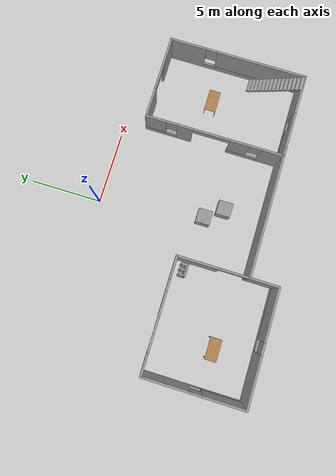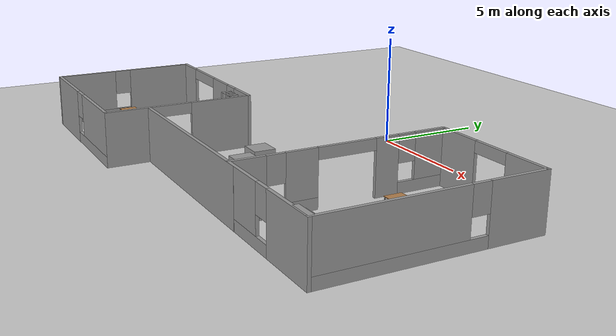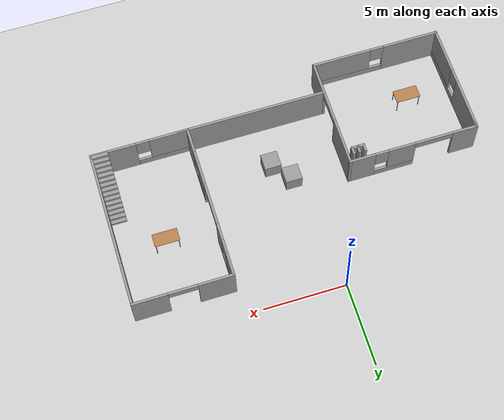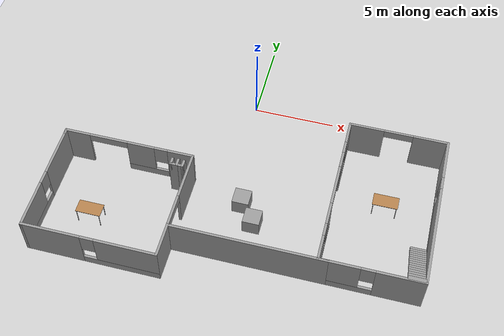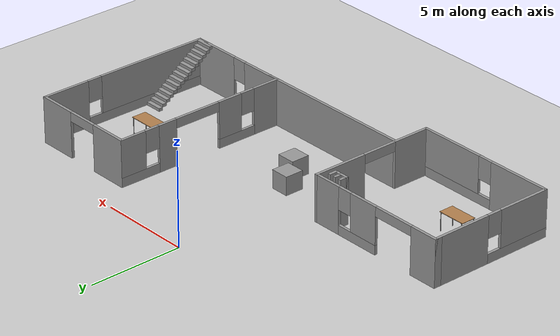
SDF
<sdf version="1.6">
 <world name="default">
  <model name="ground_plane">
   <static>1</static>
   <link name="link">
    <collision name="collision">
     <geometry><plane><normal>0 0 1</normal><size>100 100</size></plane></geometry>
     <surface>
      <contact><collide_bitmask>65535</collide_bitmask></contact>
      <friction><ode><mu>100</mu><mu2>50</mu2></ode></friction>
     </surface>
    </collision>
    <visual name="visual">
     <cast_shadows>0</cast_shadows>
     <geometry><plane><normal>0 0 1</normal><size>100 100</size></plane></geometry>
     <material>
      <script><uri>file://media/materials/scripts/gazebo.material</uri><name>Gazebo/Grey</name></script>
     </material>
    </visual>
   </link>
  </model>
  <model name="house3">
   <pose>-6.19988 -9.75215 0 0 -0 0</pose>
   <link name="Wall_3">
    <pose>-0 3.425 0 0 -0 3.14159</pose>
    <visual name="Wall_3_Visual_0">
     <pose>-3.18921 0 1.25 0 -0 0</pose>
     <geometry><box><size>1.62157 0.15 2.5</size></box></geometry>
     <material>
      <script><uri>file://media/materials/scripts/gazebo.material</uri><name>Gazebo/Grey</name></script>
      <ambient>1 1 1 1</ambient>
     </material>
     <meta><layer>0</layer></meta>
    </visual>
    <collision name="Wall_3_Collision_0">
     <geometry><box><size>1.62157 0.15 2.5</size></box></geometry>
     <pose>-3.18921 0 1.25 0 -0 0</pose>
    </collision>
    <visual name="Wall_3_Visual_1">
     <pose>3.20799 0 1.25 0 -0 0</pose>
     <geometry><box><size>1.58401 0.15 2.5</size></box></geometry>
     <material>
      <script><uri>file://media/materials/scripts/gazebo.material</uri><name>Gazebo/Grey</name></script>
      <ambient>1 1 1 1</ambient>
     </material>
     <meta><layer>0</layer></meta>
    </visual>
    <collision name="Wall_3_Collision_1">
     <geometry><box><size>1.58401 0.15 2.5</size></box></geometry>
     <pose>3.20799 0 1.25 0 -0 0</pose>
    </collision>
    <visual name="Wall_3_Visual_2">
     <pose>-1.13919 0 0.25 0 -0 0</pose>
     <geometry><box><size>2.47847 0.15 0.5</size></box></geometry>
     <material>
      <script><uri>file://media/materials/scripts/gazebo.material</uri><name>Gazebo/Grey</name></script>
      <ambient>1 1 1 1</ambient>
     </material>
     <meta><layer>0</layer></meta>
    </visual>
    <collision name="Wall_3_Collision_2">
     <geometry><box><size>2.47847 0.15 0.5</size></box></geometry>
     <pose>-1.13919 0 0.25 0 -0 0</pose>
    </collision>
    <visual name="Wall_3_Visual_3">
     <pose>-0.739193 0 1.5 0 -0 0</pose>
     <geometry><box><size>1.67847 0.15 2</size></box></geometry>
     <material>
      <script><uri>file://media/materials/scripts/gazebo.material</uri><name>Gazebo/Grey</name></script>
      <ambient>1 1 1 1</ambient>
     </material>
     <meta><layer>0</layer></meta>
    </visual>
    <collision name="Wall_3_Collision_3">
     <geometry><box><size>1.67847 0.15 2</size></box></geometry>
     <pose>-0.739193 0 1.5 0 -0 0</pose>
    </collision>
    <visual name="Wall_3_Visual_4">
     <pose>-1.97843 0 1.9 0 -0 0</pose>
     <geometry><box><size>0.8 0.15 1.2</size></box></geometry>
     <material>
      <script><uri>file://media/materials/scripts/gazebo.material</uri><name>Gazebo/Grey</name></script>
      <ambient>1 1 1 1</ambient>
     </material>
     <meta><layer>0</layer></meta>
    </visual>
    <collision name="Wall_3_Collision_4">
     <geometry><box><size>0.8 0.15 1.2</size></box></geometry>
     <pose>-1.97843 0 1.9 0 -0 0</pose>
    </collision>
    <visual name="Wall_3_Visual_5">
     <pose>1.25802 0 2.25 0 -0 0</pose>
     <geometry><box><size>2.31595 0.15 0.5</size></box></geometry>
     <material>
      <script><uri>file://media/materials/scripts/gazebo.material</uri><name>Gazebo/Grey</name></script>
      <ambient>1 1 1 1</ambient>
     </material>
     <meta><layer>0</layer></meta>
    </visual>
    <collision name="Wall_3_Collision_5">
     <geometry><box><size>2.31595 0.15 0.5</size></box></geometry>
     <pose>1.25802 0 2.25 0 -0 0</pose>
    </collision>
   </link>
   <link name="Wall_4">
    <collision name="Wall_4_Collision">
     <geometry><box><size>0.4 0.15 2.5</size></box></geometry>
     <pose>0 0 1.25 0 -0 0</pose>
    </collision>
    <visual name="Wall_4_Visual">
     <pose>0 0 1.25 0 -0 0</pose>
     <geometry><box><size>0.4 0.15 2.5</size></box></geometry>
     <material>
      <script><uri>file://media/materials/scripts/gazebo.material</uri><name>Gazebo/Grey</name></script>
      <ambient>1 1 1 1</ambient>
     </material>
     <meta><layer>0</layer></meta>
    </visual>
    <pose>-3.925 3.3 0 0 -0 -1.5708</pose>
   </link>
   <link name="Wall_6">
    <pose>-3.925 0 0 0 -0 -1.5708</pose>
    <visual name="Wall_6_Visual_0">
     <pose>-1.85783 0 1.25 0 -0 0</pose>
     <geometry><box><size>3.28434 0.15 2.5</size></box></geometry>
     <material>
      <script><uri>file://media/materials/scripts/gazebo.material</uri><name>Gazebo/Grey</name></script>
      <ambient>1 1 1 1</ambient>
     </material>
     <meta><layer>0</layer></meta>
    </visual>
    <collision name="Wall_6_Collision_0">
     <geometry><box><size>3.28434 0.15 2.5</size></box></geometry>
     <pose>-1.85783 0 1.25 0 -0 0</pose>
    </collision>
    <visual name="Wall_6_Visual_1">
     <pose>1.64217 0 0.25 0 -0 0</pose>
     <geometry><box><size>3.71566 0.15 0.5</size></box></geometry>
     <material>
      <script><uri>file://media/materials/scripts/gazebo.material</uri><name>Gazebo/Grey</name></script>
      <ambient>1 1 1 1</ambient>
     </material>
     <meta><layer>0</layer></meta>
    </visual>
    <collision name="Wall_6_Collision_1">
     <geometry><box><size>3.71566 0.15 0.5</size></box></geometry>
     <pose>1.64217 0 0.25 0 -0 0</pose>
    </collision>
    <visual name="Wall_6_Visual_2">
     <pose>2.04217 0 1.5 0 -0 0</pose>
     <geometry><box><size>2.91566 0.15 2</size></box></geometry>
     <material>
      <script><uri>file://media/materials/scripts/gazebo.material</uri><name>Gazebo/Grey</name></script>
      <ambient>1 1 1 1</ambient>
     </material>
     <meta><layer>0</layer></meta>
    </visual>
    <collision name="Wall_6_Collision_2">
     <geometry><box><size>2.91566 0.15 2</size></box></geometry>
     <pose>2.04217 0 1.5 0 -0 0</pose>
    </collision>
    <visual name="Wall_6_Visual_3">
     <pose>0.18434 0 1.9 0 -0 0</pose>
     <geometry><box><size>0.8 0.15 1.2</size></box></geometry>
     <material>
      <script><uri>file://media/materials/scripts/gazebo.material</uri><name>Gazebo/Grey</name></script>
      <ambient>1 1 1 1</ambient>
     </material>
     <meta><layer>0</layer></meta>
    </visual>
    <collision name="Wall_6_Collision_3">
     <geometry><box><size>0.8 0.15 1.2</size></box></geometry>
     <pose>0.18434 0 1.9 0 -0 0</pose>
    </collision>
   </link>
   <link name="Wall_7">
    <pose>-0 -3.425 0 0 -0 0</pose>
    <visual name="Wall_7_Visual_0">
     <pose>-2.2424 0 1.25 0 -0 0</pose>
     <geometry><box><size>3.51519 0.15 2.5</size></box></geometry>
     <material>
      <script><uri>file://media/materials/scripts/gazebo.material</uri><name>Gazebo/Grey</name></script>
      <ambient>1 1 1 1</ambient>
     </material>
     <meta><layer>0</layer></meta>
    </visual>
    <collision name="Wall_7_Collision_0">
     <geometry><box><size>3.51519 0.15 2.5</size></box></geometry>
     <pose>-2.2424 0 1.25 0 -0 0</pose>
    </collision>
    <visual name="Wall_7_Visual_1">
     <pose>1.7576 0 0.25 0 -0 0</pose>
     <geometry><box><size>4.4848 0.15 0.5</size></box></geometry>
     <material>
      <script><uri>file://media/materials/scripts/gazebo.material</uri><name>Gazebo/Grey</name></script>
      <ambient>1 1 1 1</ambient>
     </material>
     <meta><layer>0</layer></meta>
    </visual>
    <collision name="Wall_7_Collision_1">
     <geometry><box><size>4.4848 0.15 0.5</size></box></geometry>
     <pose>1.7576 0 0.25 0 -0 0</pose>
    </collision>
    <visual name="Wall_7_Visual_2">
     <pose>2.1576 0 1.5 0 -0 0</pose>
     <geometry><box><size>3.6848 0.15 2</size></box></geometry>
     <material>
      <script><uri>file://media/materials/scripts/gazebo.material</uri><name>Gazebo/Grey</name></script>
      <ambient>1 1 1 1</ambient>
     </material>
     <meta><layer>0</layer></meta>
    </visual>
    <collision name="Wall_7_Collision_2">
     <geometry><box><size>3.6848 0.15 2</size></box></geometry>
     <pose>2.1576 0 1.5 0 -0 0</pose>
    </collision>
    <visual name="Wall_7_Visual_3">
     <pose>-0.084805 0 1.9 0 -0 0</pose>
     <geometry><box><size>0.8 0.15 1.2</size></box></geometry>
     <material>
      <script><uri>file://media/materials/scripts/gazebo.material</uri><name>Gazebo/Grey</name></script>
      <ambient>1 1 1 1</ambient>
     </material>
     <meta><layer>0</layer></meta>
    </visual>
    <collision name="Wall_7_Collision_3">
     <geometry><box><size>0.8 0.15 1.2</size></box></geometry>
     <pose>-0.084805 0 1.9 0 -0 0</pose>
    </collision>
   </link>
   <link name="Wall_8">
    <pose>3.925 0 0 0 -0 1.5708</pose>
    <visual name="Wall_8_Visual_0">
     <pose>-2.44138 0 1.25 0 -0 0</pose>
     <geometry><box><size>2.11723 0.15 2.5</size></box></geometry>
     <material>
      <script><uri>file://media/materials/scripts/gazebo.material</uri><name>Gazebo/Grey</name></script>
      <ambient>1 1 1 1</ambient>
     </material>
     <meta><layer>0</layer></meta>
    </visual>
    <collision name="Wall_8_Collision_0">
     <geometry><box><size>2.11723 0.15 2.5</size></box></geometry>
     <pose>-2.44138 0 1.25 0 -0 0</pose>
    </collision>
    <visual name="Wall_8_Visual_1">
     <pose>2.01431 0 1.25 0 -0 0</pose>
     <geometry><box><size>2.97138 0.15 2.5</size></box></geometry>
     <material>
      <script><uri>file://media/materials/scripts/gazebo.material</uri><name>Gazebo/Grey</name></script>
      <ambient>1 1 1 1</ambient>
     </material>
     <meta><layer>0</layer></meta>
    </visual>
    <collision name="Wall_8_Collision_1">
     <geometry><box><size>2.97138 0.15 2.5</size></box></geometry>
     <pose>2.01431 0 1.25 0 -0 0</pose>
    </collision>
    <visual name="Wall_8_Visual_2">
     <pose>-0.427073 0 2.25 0 -0 0</pose>
     <geometry><box><size>1.91139 0.15 0.5</size></box></geometry>
     <material>
      <script><uri>file://media/materials/scripts/gazebo.material</uri><name>Gazebo/Grey</name></script>
      <ambient>1 1 1 1</ambient>
     </material>
     <meta><layer>0</layer></meta>
    </visual>
    <collision name="Wall_8_Collision_2">
     <geometry><box><size>1.91139 0.15 0.5</size></box></geometry>
     <pose>-0.427073 0 2.25 0 -0 0</pose>
    </collision>
   </link>
   <static>1</static>
  </model>
  <model name="t1">
   <pose>2.28112 -11.2146 0 0 -0 0</pose>
   <link name="Wall_7">
    <collision name="Wall_7_Collision">
     <geometry><box><size>9 0.15 2.5</size></box></geometry>
     <pose>0 0 1.25 0 -0 0</pose>
    </collision>
    <visual name="Wall_7_Visual">
     <pose>0 0 1.25 0 -0 0</pose>
     <geometry><box><size>9 0.15 2.5</size></box></geometry>
     <material>
      <script><uri>file://media/materials/scripts/gazebo.material</uri><name>Gazebo/Grey</name></script>
      <ambient>1 1 1 1</ambient>
     </material>
     <meta><layer>0</layer></meta>
    </visual>
   </link>
   <static>1</static>
  </model>
  <model name="house1">
   <pose>9.11824 -6.41072 0 0 -0 0</pose>
   <link name="Stairs_0">
    <visual name="Stairs_0_Visual_0">
     <pose>2.40484 -1.42237 0.083333 0 -0 0</pose>
     <geometry><box><size>1 0.233333 0.166667</size></box></geometry>
     <material>
      <script><uri>file://media/materials/scripts/gazebo.material</uri><name>Gazebo/Grey</name></script>
      <ambient>1 1 1 1</ambient>
     </material>
     <meta><layer>0</layer></meta>
    </visual>
    <collision name="Stairs_0_Collision_0">
     <geometry><box><size>1 0.233333 0.166667</size></box></geometry>
     <pose>2.40484 -1.42237 0.083333 0 -0 0</pose>
    </collision>
    <visual name="Stairs_0_Visual_1">
     <pose>2.40484 -1.6557 0.25 0 -0 0</pose>
     <geometry><box><size>1 0.233333 0.166667</size></box></geometry>
     <material>
      <script><uri>file://media/materials/scripts/gazebo.material</uri><name>Gazebo/Grey</name></script>
      <ambient>1 1 1 1</ambient>
     </material>
     <meta><layer>0</layer></meta>
    </visual>
    <collision name="Stairs_0_Collision_1">
     <geometry><box><size>1 0.233333 0.166667</size></box></geometry>
     <pose>2.40484 -1.6557 0.25 0 -0 0</pose>
    </collision>
    <visual name="Stairs_0_Visual_2">
     <pose>2.40484 -1.88904 0.416667 0 -0 0</pose>
     <geometry><box><size>1 0.233333 0.166667</size></box></geometry>
     <material>
      <script><uri>file://media/materials/scripts/gazebo.material</uri><name>Gazebo/Grey</name></script>
      <ambient>1 1 1 1</ambient>
     </material>
     <meta><layer>0</layer></meta>
    </visual>
    <collision name="Stairs_0_Collision_2">
     <geometry><box><size>1 0.233333 0.166667</size></box></geometry>
     <pose>2.40484 -1.88904 0.416667 0 -0 0</pose>
    </collision>
    <visual name="Stairs_0_Visual_3">
     <pose>2.40484 -2.12237 0.583333 0 -0 0</pose>
     <geometry><box><size>1 0.233333 0.166667</size></box></geometry>
     <material>
      <script><uri>file://media/materials/scripts/gazebo.material</uri><name>Gazebo/Grey</name></script>
      <ambient>1 1 1 1</ambient>
     </material>
     <meta><layer>0</layer></meta>
    </visual>
    <collision name="Stairs_0_Collision_3">
     <geometry><box><size>1 0.233333 0.166667</size></box></geometry>
     <pose>2.40484 -2.12237 0.583333 0 -0 0</pose>
    </collision>
    <visual name="Stairs_0_Visual_4">
     <pose>2.40484 -2.3557 0.75 0 -0 0</pose>
     <geometry><box><size>1 0.233333 0.166667</size></box></geometry>
     <material>
      <script><uri>file://media/materials/scripts/gazebo.material</uri><name>Gazebo/Grey</name></script>
      <ambient>1 1 1 1</ambient>
     </material>
     <meta><layer>0</layer></meta>
    </visual>
    <collision name="Stairs_0_Collision_4">
     <geometry><box><size>1 0.233333 0.166667</size></box></geometry>
     <pose>2.40484 -2.3557 0.75 0 -0 0</pose>
    </collision>
    <visual name="Stairs_0_Visual_5">
     <pose>2.40484 -2.58904 0.916667 0 -0 0</pose>
     <geometry><box><size>1 0.233333 0.166667</size></box></geometry>
     <material>
      <script><uri>file://media/materials/scripts/gazebo.material</uri><name>Gazebo/Grey</name></script>
      <ambient>1 1 1 1</ambient>
     </material>
     <meta><layer>0</layer></meta>
    </visual>
    <collision name="Stairs_0_Collision_5">
     <geometry><box><size>1 0.233333 0.166667</size></box></geometry>
     <pose>2.40484 -2.58904 0.916667 0 -0 0</pose>
    </collision>
    <visual name="Stairs_0_Visual_6">
     <pose>2.40484 -2.82237 1.08333 0 -0 0</pose>
     <geometry><box><size>1 0.233333 0.166667</size></box></geometry>
     <material>
      <script><uri>file://media/materials/scripts/gazebo.material</uri><name>Gazebo/Grey</name></script>
      <ambient>1 1 1 1</ambient>
     </material>
     <meta><layer>0</layer></meta>
    </visual>
    <collision name="Stairs_0_Collision_6">
     <geometry><box><size>1 0.233333 0.166667</size></box></geometry>
     <pose>2.40484 -2.82237 1.08333 0 -0 0</pose>
    </collision>
    <visual name="Stairs_0_Visual_7">
     <pose>2.40484 -3.0557 1.25 0 -0 0</pose>
     <geometry><box><size>1 0.233333 0.166667</size></box></geometry>
     <material>
      <script><uri>file://media/materials/scripts/gazebo.material</uri><name>Gazebo/Grey</name></script>
      <ambient>1 1 1 1</ambient>
     </material>
     <meta><layer>0</layer></meta>
    </visual>
    <collision name="Stairs_0_Collision_7">
     <geometry><box><size>1 0.233333 0.166667</size></box></geometry>
     <pose>2.40484 -3.0557 1.25 0 -0 0</pose>
    </collision>
    <visual name="Stairs_0_Visual_8">
     <pose>2.40484 -3.28904 1.41667 0 -0 0</pose>
     <geometry><box><size>1 0.233333 0.166667</size></box></geometry>
     <material>
      <script><uri>file://media/materials/scripts/gazebo.material</uri><name>Gazebo/Grey</name></script>
      <ambient>1 1 1 1</ambient>
     </material>
     <meta><layer>0</layer></meta>
    </visual>
    <collision name="Stairs_0_Collision_8">
     <geometry><box><size>1 0.233333 0.166667</size></box></geometry>
     <pose>2.40484 -3.28904 1.41667 0 -0 0</pose>
    </collision>
    <visual name="Stairs_0_Visual_9">
     <pose>2.40484 -3.52237 1.58333 0 -0 0</pose>
     <geometry><box><size>1 0.233333 0.166667</size></box></geometry>
     <material>
      <script><uri>file://media/materials/scripts/gazebo.material</uri><name>Gazebo/Grey</name></script>
      <ambient>1 1 1 1</ambient>
     </material>
     <meta><layer>0</layer></meta>
    </visual>
    <collision name="Stairs_0_Collision_9">
     <geometry><box><size>1 0.233333 0.166667</size></box></geometry>
     <pose>2.40484 -3.52237 1.58333 0 -0 0</pose>
    </collision>
    <visual name="Stairs_0_Visual_10">
     <pose>2.40484 -3.7557 1.75 0 -0 0</pose>
     <geometry><box><size>1 0.233333 0.166667</size></box></geometry>
     <material>
      <script><uri>file://media/materials/scripts/gazebo.material</uri><name>Gazebo/Grey</name></script>
      <ambient>1 1 1 1</ambient>
     </material>
     <meta><layer>0</layer></meta>
    </visual>
    <collision name="Stairs_0_Collision_10">
     <geometry><box><size>1 0.233333 0.166667</size></box></geometry>
     <pose>2.40484 -3.7557 1.75 0 -0 0</pose>
    </collision>
    <visual name="Stairs_0_Visual_11">
     <pose>2.40484 -3.98904 1.91667 0 -0 0</pose>
     <geometry><box><size>1 0.233333 0.166667</size></box></geometry>
     <material>
      <script><uri>file://media/materials/scripts/gazebo.material</uri><name>Gazebo/Grey</name></script>
      <ambient>1 1 1 1</ambient>
     </material>
     <meta><layer>0</layer></meta>
    </visual>
    <collision name="Stairs_0_Collision_11">
     <geometry><box><size>1 0.233333 0.166667</size></box></geometry>
     <pose>2.40484 -3.98904 1.91667 0 -0 0</pose>
    </collision>
    <visual name="Stairs_0_Visual_12">
     <pose>2.40484 -4.22237 2.08333 0 -0 0</pose>
     <geometry><box><size>1 0.233333 0.166667</size></box></geometry>
     <material>
      <script><uri>file://media/materials/scripts/gazebo.material</uri><name>Gazebo/Grey</name></script>
      <ambient>1 1 1 1</ambient>
     </material>
     <meta><layer>0</layer></meta>
    </visual>
    <collision name="Stairs_0_Collision_12">
     <geometry><box><size>1 0.233333 0.166667</size></box></geometry>
     <pose>2.40484 -4.22237 2.08333 0 -0 0</pose>
    </collision>
    <visual name="Stairs_0_Visual_13">
     <pose>2.40484 -4.4557 2.25 0 -0 0</pose>
     <geometry><box><size>1 0.233333 0.166667</size></box></geometry>
     <material>
      <script><uri>file://media/materials/scripts/gazebo.material</uri><name>Gazebo/Grey</name></script>
      <ambient>1 1 1 1</ambient>
     </material>
     <meta><layer>0</layer></meta>
    </visual>
    <collision name="Stairs_0_Collision_13">
     <geometry><box><size>1 0.233333 0.166667</size></box></geometry>
     <pose>2.40484 -4.4557 2.25 0 -0 0</pose>
    </collision>
    <visual name="Stairs_0_Visual_14">
     <pose>2.40484 -4.68904 2.41667 0 -0 0</pose>
     <geometry><box><size>1 0.233333 0.166667</size></box></geometry>
     <material>
      <script><uri>file://media/materials/scripts/gazebo.material</uri><name>Gazebo/Grey</name></script>
      <ambient>1 1 1 1</ambient>
     </material>
     <meta><layer>0</layer></meta>
    </visual>
    <collision name="Stairs_0_Collision_14">
     <geometry><box><size>1 0.233333 0.166667</size></box></geometry>
     <pose>2.40484 -4.68904 2.41667 0 -0 0</pose>
    </collision>
   </link>
   <link name="Wall_0">
    <pose>-2.925 -0 0 0 -0 1.5708</pose>
    <visual name="Wall_0_Visual_0">
     <pose>-4.08439 0 1.25 0 -0 0</pose>
     <geometry><box><size>1.58121 0.15 2.5</size></box></geometry>
     <material>
      <script><uri>file://media/materials/scripts/gazebo.material</uri><name>Gazebo/Grey</name></script>
      <ambient>1 1 1 1</ambient>
     </material>
     <meta><layer>0</layer></meta>
    </visual>
    <collision name="Wall_0_Collision_0">
     <geometry><box><size>1.58121 0.15 2.5</size></box></geometry>
     <pose>-4.08439 0 1.25 0 -0 0</pose>
    </collision>
    <visual name="Wall_0_Visual_1">
     <pose>2.04929 0 1.25 0 -0 0</pose>
     <geometry><box><size>1.0642 0.15 2.5</size></box></geometry>
     <material>
      <script><uri>file://media/materials/scripts/gazebo.material</uri><name>Gazebo/Grey</name></script>
      <ambient>1 1 1 1</ambient>
     </material>
     <meta><layer>0</layer></meta>
    </visual>
    <collision name="Wall_0_Collision_1">
     <geometry><box><size>1.0642 0.15 2.5</size></box></geometry>
     <pose>2.04929 0 1.25 0 -0 0</pose>
    </collision>
    <visual name="Wall_0_Visual_2">
     <pose>-2.19413 0 0.25 0 -0 0</pose>
     <geometry><box><size>2.19931 0.15 0.5</size></box></geometry>
     <material>
      <script><uri>file://media/materials/scripts/gazebo.material</uri><name>Gazebo/Grey</name></script>
      <ambient>1 1 1 1</ambient>
     </material>
     <meta><layer>0</layer></meta>
    </visual>
    <collision name="Wall_0_Collision_2">
     <geometry><box><size>2.19931 0.15 0.5</size></box></geometry>
     <pose>-2.19413 0 0.25 0 -0 0</pose>
    </collision>
    <visual name="Wall_0_Visual_3">
     <pose>3.72819 0 0.25 0 -0 0</pose>
     <geometry><box><size>2.29361 0.15 0.5</size></box></geometry>
     <material>
      <script><uri>file://media/materials/scripts/gazebo.material</uri><name>Gazebo/Grey</name></script>
      <ambient>1 1 1 1</ambient>
     </material>
     <meta><layer>0</layer></meta>
    </visual>
    <collision name="Wall_0_Collision_3">
     <geometry><box><size>2.29361 0.15 0.5</size></box></geometry>
     <pose>3.72819 0 0.25 0 -0 0</pose>
    </collision>
    <visual name="Wall_0_Visual_4">
     <pose>-1.79413 0 1.5 0 -0 0</pose>
     <geometry><box><size>1.39931 0.15 2</size></box></geometry>
     <material>
      <script><uri>file://media/materials/scripts/gazebo.material</uri><name>Gazebo/Grey</name></script>
      <ambient>1 1 1 1</ambient>
     </material>
     <meta><layer>0</layer></meta>
    </visual>
    <collision name="Wall_0_Collision_4">
     <geometry><box><size>1.39931 0.15 2</size></box></geometry>
     <pose>-1.79413 0 1.5 0 -0 0</pose>
    </collision>
    <visual name="Wall_0_Visual_5">
     <pose>-1.79413 0 1.5 0 -0 0</pose>
     <geometry><box><size>1.39931 0.15 2</size></box></geometry>
     <material>
      <script><uri>file://media/materials/scripts/gazebo.material</uri><name>Gazebo/Grey</name></script>
      <ambient>1 1 1 1</ambient>
     </material>
     <meta><layer>0</layer></meta>
    </visual>
    <collision name="Wall_0_Collision_5">
     <geometry><box><size>1.39931 0.15 2</size></box></geometry>
     <pose>-1.79413 0 1.5 0 -0 0</pose>
    </collision>
    <visual name="Wall_0_Visual_6">
     <pose>4.12819 0 1.5 0 -0 0</pose>
     <geometry><box><size>1.49361 0.15 2</size></box></geometry>
     <material>
      <script><uri>file://media/materials/scripts/gazebo.material</uri><name>Gazebo/Grey</name></script>
      <ambient>1 1 1 1</ambient>
     </material>
     <meta><layer>0</layer></meta>
    </visual>
    <collision name="Wall_0_Collision_6">
     <geometry><box><size>1.49361 0.15 2</size></box></geometry>
     <pose>4.12819 0 1.5 0 -0 0</pose>
    </collision>
    <visual name="Wall_0_Visual_7">
     <pose>-2.89379 0 1.9 0 -0 0</pose>
     <geometry><box><size>0.8 0.15 1.2</size></box></geometry>
     <material>
      <script><uri>file://media/materials/scripts/gazebo.material</uri><name>Gazebo/Grey</name></script>
      <ambient>1 1 1 1</ambient>
     </material>
     <meta><layer>0</layer></meta>
    </visual>
    <collision name="Wall_0_Collision_7">
     <geometry><box><size>0.8 0.15 1.2</size></box></geometry>
     <pose>-2.89379 0 1.9 0 -0 0</pose>
    </collision>
    <visual name="Wall_0_Visual_8">
     <pose>2.98139 0 1.9 0 -0 0</pose>
     <geometry><box><size>0.8 0.15 1.2</size></box></geometry>
     <material>
      <script><uri>file://media/materials/scripts/gazebo.material</uri><name>Gazebo/Grey</name></script>
      <ambient>1 1 1 1</ambient>
     </material>
     <meta><layer>0</layer></meta>
    </visual>
    <collision name="Wall_0_Collision_8">
     <geometry><box><size>0.8 0.15 1.2</size></box></geometry>
     <pose>2.98139 0 1.9 0 -0 0</pose>
    </collision>
    <visual name="Wall_0_Visual_9">
     <pose>0.211357 0 2.25 0 -0 0</pose>
     <geometry><box><size>2.61166 0.15 0.5</size></box></geometry>
     <material>
      <script><uri>file://media/materials/scripts/gazebo.material</uri><name>Gazebo/Grey</name></script>
      <ambient>1 1 1 1</ambient>
     </material>
     <meta><layer>0</layer></meta>
    </visual>
    <collision name="Wall_0_Collision_9">
     <geometry><box><size>2.61166 0.15 0.5</size></box></geometry>
     <pose>0.211357 0 2.25 0 -0 0</pose>
    </collision>
    <visual name="Wall_0_Visual_10">
     <pose>0.211357 0 2.25 0 -0 0</pose>
     <geometry><box><size>2.61166 0.15 0.5</size></box></geometry>
     <material>
      <script><uri>file://media/materials/scripts/gazebo.material</uri><name>Gazebo/Grey</name></script>
      <ambient>1 1 1 1</ambient>
     </material>
     <meta><layer>0</layer></meta>
    </visual>
    <collision name="Wall_0_Collision_10">
     <geometry><box><size>2.61166 0.15 0.5</size></box></geometry>
     <pose>0.211357 0 2.25 0 -0 0</pose>
    </collision>
   </link>
   <link name="Wall_1">
    <pose>0 4.8 0 0 -0 0</pose>
    <visual name="Wall_1_Visual_0">
     <pose>-1.93355 0 1.25 0 -0 0</pose>
     <geometry><box><size>2.13291 0.15 2.5</size></box></geometry>
     <material>
      <script><uri>file://media/materials/scripts/gazebo.material</uri><name>Gazebo/Grey</name></script>
      <ambient>1 1 1 1</ambient>
     </material>
     <meta><layer>0</layer></meta>
    </visual>
    <collision name="Wall_1_Collision_0">
     <geometry><box><size>2.13291 0.15 2.5</size></box></geometry>
     <pose>-1.93355 0 1.25 0 -0 0</pose>
    </collision>
    <visual name="Wall_1_Visual_1">
     <pose>1.9328 0 1.25 0 -0 0</pose>
     <geometry><box><size>2.13439 0.15 2.5</size></box></geometry>
     <material>
      <script><uri>file://media/materials/scripts/gazebo.material</uri><name>Gazebo/Grey</name></script>
      <ambient>1 1 1 1</ambient>
     </material>
     <meta><layer>0</layer></meta>
    </visual>
    <collision name="Wall_1_Collision_1">
     <geometry><box><size>2.13439 0.15 2.5</size></box></geometry>
     <pose>1.9328 0 1.25 0 -0 0</pose>
    </collision>
    <visual name="Wall_1_Visual_2">
     <pose>-0.000743 0 2.25 0 -0 0</pose>
     <geometry><box><size>1.7327 0.15 0.5</size></box></geometry>
     <material>
      <script><uri>file://media/materials/scripts/gazebo.material</uri><name>Gazebo/Grey</name></script>
      <ambient>1 1 1 1</ambient>
     </material>
     <meta><layer>0</layer></meta>
    </visual>
    <collision name="Wall_1_Collision_2">
     <geometry><box><size>1.7327 0.15 0.5</size></box></geometry>
     <pose>-0.000743 0 2.25 0 -0 0</pose>
    </collision>
   </link>
   <link name="Wall_2">
    <pose>2.925 -0 0 0 -0 -1.5708</pose>
    <visual name="Wall_2_Visual_0">
     <pose>-3.56149 0 1.25 0 -0 0</pose>
     <geometry><box><size>2.62701 0.15 2.5</size></box></geometry>
     <material>
      <script><uri>file://media/materials/scripts/gazebo.material</uri><name>Gazebo/Grey</name></script>
      <ambient>1 1 1 1</ambient>
     </material>
     <meta><layer>0</layer></meta>
    </visual>
    <collision name="Wall_2_Collision_0">
     <geometry><box><size>2.62701 0.15 2.5</size></box></geometry>
     <pose>-3.56149 0 1.25 0 -0 0</pose>
    </collision>
    <visual name="Wall_2_Visual_1">
     <pose>1.31351 0 0.25 0 -0 0</pose>
     <geometry><box><size>7.12299 0.15 0.5</size></box></geometry>
     <material>
      <script><uri>file://media/materials/scripts/gazebo.material</uri><name>Gazebo/Grey</name></script>
      <ambient>1 1 1 1</ambient>
     </material>
     <meta><layer>0</layer></meta>
    </visual>
    <collision name="Wall_2_Collision_1">
     <geometry><box><size>7.12299 0.15 0.5</size></box></geometry>
     <pose>1.31351 0 0.25 0 -0 0</pose>
    </collision>
    <visual name="Wall_2_Visual_2">
     <pose>1.71351 0 1.5 0 -0 0</pose>
     <geometry><box><size>6.32299 0.15 2</size></box></geometry>
     <material>
      <script><uri>file://media/materials/scripts/gazebo.material</uri><name>Gazebo/Grey</name></script>
      <ambient>1 1 1 1</ambient>
     </material>
     <meta><layer>0</layer></meta>
    </visual>
    <collision name="Wall_2_Collision_2">
     <geometry><box><size>6.32299 0.15 2</size></box></geometry>
     <pose>1.71351 0 1.5 0 -0 0</pose>
    </collision>
    <visual name="Wall_2_Visual_3">
     <pose>-1.84799 0 1.9 0 -0 0</pose>
     <geometry><box><size>0.8 0.15 1.2</size></box></geometry>
     <material>
      <script><uri>file://media/materials/scripts/gazebo.material</uri><name>Gazebo/Grey</name></script>
      <ambient>1 1 1 1</ambient>
     </material>
     <meta><layer>0</layer></meta>
    </visual>
    <collision name="Wall_2_Collision_3">
     <geometry><box><size>0.8 0.15 1.2</size></box></geometry>
     <pose>-1.84799 0 1.9 0 -0 0</pose>
    </collision>
   </link>
   <link name="Wall_3">
    <pose>0 -4.8 0 0 -0 3.14159</pose>
    <visual name="Wall_3_Visual_0">
     <pose>-1.61122 0 1.25 0 -0 0</pose>
     <geometry><box><size>2.77757 0.15 2.5</size></box></geometry>
     <material>
      <script><uri>file://media/materials/scripts/gazebo.material</uri><name>Gazebo/Grey</name></script>
      <ambient>1 1 1 1</ambient>
     </material>
     <meta><layer>0</layer></meta>
    </visual>
    <collision name="Wall_3_Collision_0">
     <geometry><box><size>2.77757 0.15 2.5</size></box></geometry>
     <pose>-1.61122 0 1.25 0 -0 0</pose>
    </collision>
    <visual name="Wall_3_Visual_1">
     <pose>1.38878 0 0.25 0 -0 0</pose>
     <geometry><box><size>3.22243 0.15 0.5</size></box></geometry>
     <material>
      <script><uri>file://media/materials/scripts/gazebo.material</uri><name>Gazebo/Grey</name></script>
      <ambient>1 1 1 1</ambient>
     </material>
     <meta><layer>0</layer></meta>
    </visual>
    <collision name="Wall_3_Collision_1">
     <geometry><box><size>3.22243 0.15 0.5</size></box></geometry>
     <pose>1.38878 0 0.25 0 -0 0</pose>
    </collision>
    <visual name="Wall_3_Visual_2">
     <pose>1.78878 0 1.5 0 -0 0</pose>
     <geometry><box><size>2.42243 0.15 2</size></box></geometry>
     <material>
      <script><uri>file://media/materials/scripts/gazebo.material</uri><name>Gazebo/Grey</name></script>
      <ambient>1 1 1 1</ambient>
     </material>
     <meta><layer>0</layer></meta>
    </visual>
    <collision name="Wall_3_Collision_2">
     <geometry><box><size>2.42243 0.15 2</size></box></geometry>
     <pose>1.78878 0 1.5 0 -0 0</pose>
    </collision>
    <visual name="Wall_3_Visual_3">
     <pose>0.177567 0 1.9 0 -0 0</pose>
     <geometry><box><size>0.8 0.15 1.2</size></box></geometry>
     <material>
      <script><uri>file://media/materials/scripts/gazebo.material</uri><name>Gazebo/Grey</name></script>
      <ambient>1 1 1 1</ambient>
     </material>
     <meta><layer>0</layer></meta>
    </visual>
    <collision name="Wall_3_Collision_3">
     <geometry><box><size>0.8 0.15 1.2</size></box></geometry>
     <pose>0.177567 0 1.9 0 -0 0</pose>
    </collision>
   </link>
   <static>1</static>
  </model>
  <model name="so3">
   <pose>-3.00139 -6.97482 0 0 -0 0</pose>
   <link name="Wall_10">
    <collision name="Wall_10_Collision">
     <geometry><box><size>0.5 0.15 2.5</size></box></geometry>
     <pose>0 0 1.25 0 -0 0</pose>
    </collision>
    <visual name="Wall_10_Visual">
     <pose>0 0 1.25 0 -0 0</pose>
     <geometry><box><size>0.5 0.15 2.5</size></box></geometry>
     <material>
      <script><uri>file://media/materials/scripts/gazebo.material</uri><name>Gazebo/Grey</name></script>
      <ambient>1 1 1 1</ambient>
     </material>
     <meta><layer>0</layer></meta>
    </visual>
    <pose>-0.35 0 0 0 -0 -1.5708</pose>
   </link>
   <link name="Wall_12">
    <collision name="Wall_12_Collision">
     <geometry><box><size>0.5 0.15 2.5</size></box></geometry>
     <pose>0 0 1.25 0 -0 0</pose>
    </collision>
    <visual name="Wall_12_Visual">
     <pose>0 0 1.25 0 -0 0</pose>
     <geometry><box><size>0.5 0.15 2.5</size></box></geometry>
     <material>
      <script><uri>file://media/materials/scripts/gazebo.material</uri><name>Gazebo/Grey</name></script>
      <ambient>1 1 1 1</ambient>
     </material>
     <meta><layer>0</layer></meta>
    </visual>
    <pose>-0.175 -0.175 0 0 -0 0</pose>
   </link>
   <link name="Wall_3">
    <collision name="Wall_3_Collision">
     <geometry><box><size>0.5 0.15 2.5</size></box></geometry>
     <pose>0 0 1.25 0 -0 0</pose>
    </collision>
    <visual name="Wall_3_Visual">
     <pose>0 0 1.25 0 -0 0</pose>
     <geometry><box><size>0.5 0.15 2.5</size></box></geometry>
     <material>
      <script><uri>file://media/materials/scripts/gazebo.material</uri><name>Gazebo/Grey</name></script>
      <ambient>1 1 1 1</ambient>
     </material>
     <meta><layer>0</layer></meta>
    </visual>
    <pose>0.35 0 0 0 -0 -1.5708</pose>
   </link>
   <link name="Wall_4">
    <collision name="Wall_4_Collision">
     <geometry><box><size>0.5 0.15 2.5</size></box></geometry>
     <pose>0 0 1.25 0 -0 0</pose>
    </collision>
    <visual name="Wall_4_Visual">
     <pose>0 0 1.25 0 -0 0</pose>
     <geometry><box><size>0.5 0.15 2.5</size></box></geometry>
     <material>
      <script><uri>file://media/materials/scripts/gazebo.material</uri><name>Gazebo/Grey</name></script>
      <ambient>1 1 1 1</ambient>
     </material>
     <meta><layer>0</layer></meta>
    </visual>
    <pose>0.175 -0.175 0 0 -0 3.14159</pose>
   </link>
   <link name="Wall_8">
    <collision name="Wall_8_Collision">
     <geometry><box><size>0.5 0.15 2.5</size></box></geometry>
     <pose>0 0 1.25 0 -0 0</pose>
    </collision>
    <visual name="Wall_8_Visual">
     <pose>0 0 1.25 0 -0 0</pose>
     <geometry><box><size>0.5 0.15 2.5</size></box></geometry>
     <material>
      <script><uri>file://media/materials/scripts/gazebo.material</uri><name>Gazebo/Grey</name></script>
      <ambient>1 1 1 1</ambient>
     </material>
     <meta><layer>0</layer></meta>
    </visual>
    <pose>-0 0 0 0 -0 1.5708</pose>
   </link>
   <static>1</static>
  </model>
  <model name="table_2">
   <static>1</static>
   <link name="link">
    <collision name="surface">
     <pose>0 0 1 0 -0 0</pose>
     <geometry><box><size>1.5 0.8 0.03</size></box></geometry>
     <surface><friction><ode><mu>0.6</mu><mu2>0.6</mu2></ode></friction></surface>
    </collision>
    <visual name="visual1">
     <pose>0 0 1 0 -0 0</pose>
     <geometry><box><size>1.5 0.8 0.03</size></box></geometry>
     <material>
      <script><uri>file://media/materials/scripts/gazebo.material</uri><name>Gazebo/Wood</name></script>
     </material>
    </visual>
    <collision name="front_left_leg">
     <pose>0.68 0.38 0.5 0 -0 0</pose>
     <geometry><cylinder><radius>0.02</radius><length>1</length></cylinder></geometry>
    </collision>
    <visual name="front_left_leg">
     <pose>0.68 0.38 0.5 0 -0 0</pose>
     <geometry><cylinder><radius>0.02</radius><length>1</length></cylinder></geometry>
     <material>
      <script><uri>file://media/materials/scripts/gazebo.material</uri><name>Gazebo/Grey</name></script>
     </material>
    </visual>
    <collision name="front_right_leg">
     <pose>0.68 -0.38 0.5 0 -0 0</pose>
     <geometry><cylinder><radius>0.02</radius><length>1</length></cylinder></geometry>
    </collision>
    <visual name="front_right_leg">
     <pose>0.68 -0.38 0.5 0 -0 0</pose>
     <geometry><cylinder><radius>0.02</radius><length>1</length></cylinder></geometry>
     <material>
      <script><uri>file://media/materials/scripts/gazebo.material</uri><name>Gazebo/Grey</name></script>
     </material>
    </visual>
    <collision name="back_right_leg">
     <pose>-0.68 -0.38 0.5 0 -0 0</pose>
     <geometry><cylinder><radius>0.02</radius><length>1</length></cylinder></geometry>
    </collision>
    <visual name="back_right_leg">
     <pose>-0.68 -0.38 0.5 0 -0 0</pose>
     <geometry><cylinder><radius>0.02</radius><length>1</length></cylinder></geometry>
     <material>
      <script><uri>file://media/materials/scripts/gazebo.material</uri><name>Gazebo/Grey</name></script>
     </material>
    </visual>
    <collision name="back_left_leg">
     <pose>-0.68 0.38 0.5 0 -0 0</pose>
     <geometry><cylinder><radius>0.02</radius><length>1</length></cylinder></geometry>
    </collision>
    <visual name="back_left_leg">
     <pose>-0.68 0.38 0.5 0 -0 0</pose>
     <geometry><cylinder><radius>0.02</radius><length>1</length></cylinder></geometry>
     <material>
      <script><uri>file://media/materials/scripts/gazebo.material</uri><name>Gazebo/Grey</name></script>
     </material>
    </visual>
   </link>
   <pose>-7.3387 -10.3887 0 0 -0 0</pose>
  </model>
  <model name="table_3">
   <static>1</static>
   <link name="link">
    <collision name="surface">
     <pose>0 0 1 0 -0 0</pose>
     <geometry><box><size>1.5 0.8 0.03</size></box></geometry>
     <surface><friction><ode><mu>0.6</mu><mu2>0.6</mu2></ode></friction></surface>
    </collision>
    <visual name="visual1">
     <pose>0 0 1 0 -0 0</pose>
     <geometry><box><size>1.5 0.8 0.03</size></box></geometry>
     <material>
      <script><uri>file://media/materials/scripts/gazebo.material</uri><name>Gazebo/Wood</name></script>
     </material>
    </visual>
    <collision name="front_left_leg">
     <pose>0.68 0.38 0.5 0 -0 0</pose>
     <geometry><cylinder><radius>0.02</radius><length>1</length></cylinder></geometry>
    </collision>
    <visual name="front_left_leg">
     <pose>0.68 0.38 0.5 0 -0 0</pose>
     <geometry><cylinder><radius>0.02</radius><length>1</length></cylinder></geometry>
     <material>
      <script><uri>file://media/materials/scripts/gazebo.material</uri><name>Gazebo/Grey</name></script>
     </material>
    </visual>
    <collision name="front_right_leg">
     <pose>0.68 -0.38 0.5 0 -0 0</pose>
     <geometry><cylinder><radius>0.02</radius><length>1</length></cylinder></geometry>
    </collision>
    <visual name="front_right_leg">
     <pose>0.68 -0.38 0.5 0 -0 0</pose>
     <geometry><cylinder><radius>0.02</radius><length>1</length></cylinder></geometry>
     <material>
      <script><uri>file://media/materials/scripts/gazebo.material</uri><name>Gazebo/Grey</name></script>
     </material>
    </visual>
    <collision name="back_right_leg">
     <pose>-0.68 -0.38 0.5 0 -0 0</pose>
     <geometry><cylinder><radius>0.02</radius><length>1</length></cylinder></geometry>
    </collision>
    <visual name="back_right_leg">
     <pose>-0.68 -0.38 0.5 0 -0 0</pose>
     <geometry><cylinder><radius>0.02</radius><length>1</length></cylinder></geometry>
     <material>
      <script><uri>file://media/materials/scripts/gazebo.material</uri><name>Gazebo/Grey</name></script>
     </material>
    </visual>
    <collision name="back_left_leg">
     <pose>-0.68 0.38 0.5 0 -0 0</pose>
     <geometry><cylinder><radius>0.02</radius><length>1</length></cylinder></geometry>
    </collision>
    <visual name="back_left_leg">
     <pose>-0.68 0.38 0.5 0 -0 0</pose>
     <geometry><cylinder><radius>0.02</radius><length>1</length></cylinder></geometry>
     <material>
      <script><uri>file://media/materials/scripts/gazebo.material</uri><name>Gazebo/Grey</name></script>
     </material>
    </visual>
   </link>
   <pose>9.16188 -5.58133 0 0 -0 0</pose>
  </model>
  <model name="unit_box">
   <pose>0.970773 -7.35356 0.5 0 -0 -0.001769</pose>
   <link name="link">
    <inertial>
     <mass>1</mass>
     <inertia>
      <ixx>0.166667</ixx>
      <ixy>0</ixy>
      <ixz>0</ixz>
      <iyy>0.166667</iyy>
      <iyz>0</iyz>
      <izz>0.166667</izz>
     </inertia>
    </inertial>
    <collision name="collision"><geometry><box><size>1 1 1</size></box></geometry></collision>
    <visual name="visual">
     <geometry><box><size>1 1 1</size></box></geometry>
     <material>
      <script><name>Gazebo/Grey</name><uri>file://media/materials/scripts/gazebo.material</uri></script>
     </material>
    </visual>
   </link>
  </model>
  <model name="unit_box_0">
   <pose>1.90244 -8.54533 0.5 -0 -0 -0</pose>
   <link name="link">
    <inertial>
     <mass>1</mass>
     <inertia>
      <ixx>0.166667</ixx>
      <ixy>0</ixy>
      <ixz>0</ixz>
      <iyy>0.166667</iyy>
      <iyz>0</iyz>
      <izz>0.166667</izz>
     </inertia>
    </inertial>
    <collision name="collision"><geometry><box><size>1 1 1</size></box></geometry></collision>
    <visual name="visual">
     <geometry><box><size>1 1 1</size></box></geometry>
     <material>
      <script><name>Gazebo/Grey</name><uri>file://media/materials/scripts/gazebo.material</uri></script>
     </material>
    </visual>
   </link>
  </model>
 </world>
</sdf>
